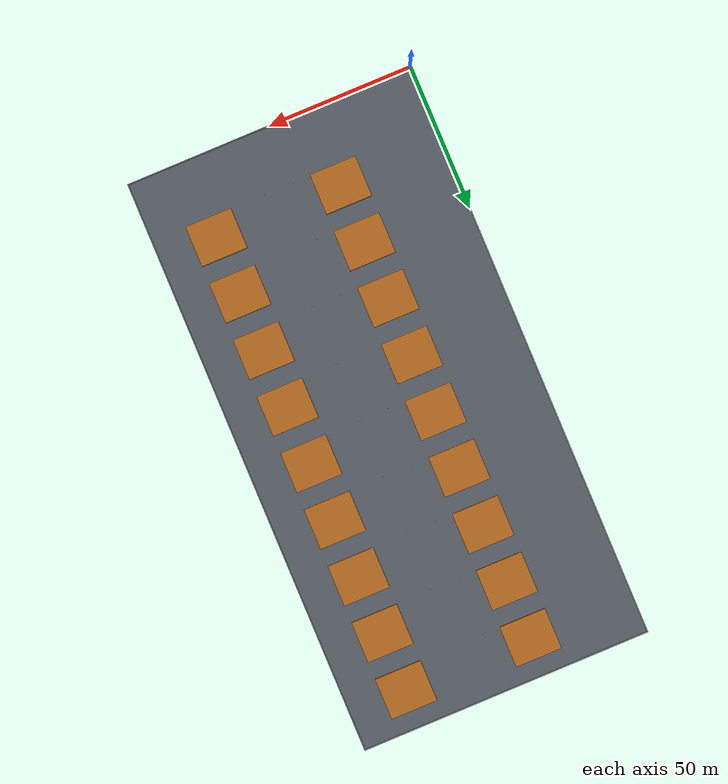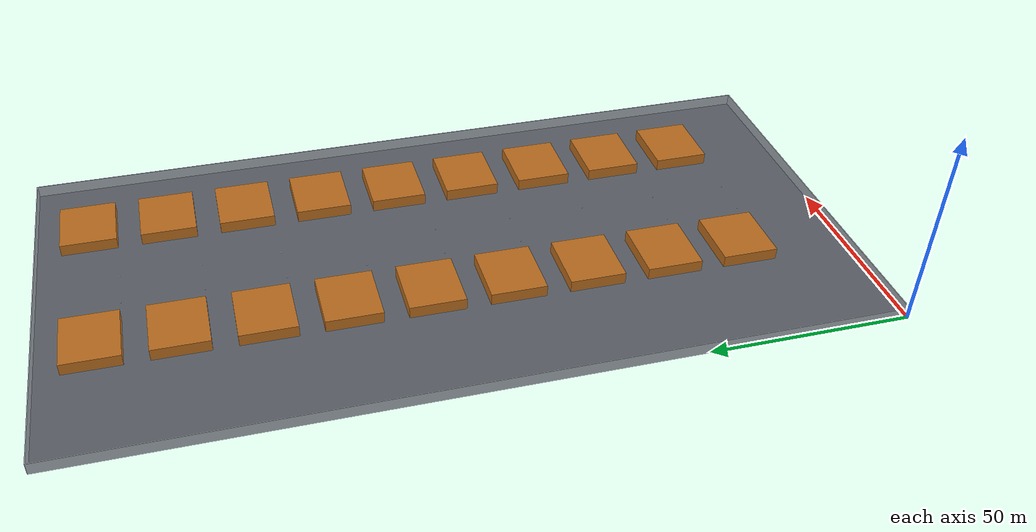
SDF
<?xml version="1.0"?>
<sdf version="1.6">
  <world name="warehouse_generated">
    <gravity>0 0 -9.81</gravity>
    <include><uri>model://sun</uri></include>
    <model name="floor_1">
      <static>true</static><pose>0 0 0 0 0 0</pose>
      <link name="link">
        <visual name="visual"><geometry><mesh><uri>file:///home/yahboom/swerve_bringup/generated/maps/WH-TEST-01/7/gazebo/models/floor_1/mesh.obj</uri><scale>1 1 1</scale></mesh></geometry><material><ambient>0.35 0.37 0.40 1</ambient><diffuse>0.35 0.37 0.40 1</diffuse></material></visual>
        <collision name="collision"><geometry><mesh><uri>file:///home/yahboom/swerve_bringup/generated/maps/WH-TEST-01/7/gazebo/models/floor_1/mesh.obj</uri><scale>1 1 1</scale></mesh></geometry></collision>
      </link>
    </model>
    <model name="floor_1_boundary_wall_0">
      <static>true</static>
      <pose>50 0 1.5 0 0 0</pose>
      <link name="link">
        <visual name="visual"><geometry><box><size>100 0.2 3</size></box></geometry><material><ambient>0.62 0.65 0.68 1</ambient><diffuse>0.62 0.65 0.68 1</diffuse></material></visual>
        <collision name="collision"><geometry><box><size>100 0.2 3</size></box></geometry></collision>
      </link>
    </model>
    <model name="floor_1_boundary_wall_1">
      <static>true</static>
      <pose>100 100 1.5 0 0 1.57079633</pose>
      <link name="link">
        <visual name="visual"><geometry><box><size>200 0.2 3</size></box></geometry><material><ambient>0.62 0.65 0.68 1</ambient><diffuse>0.62 0.65 0.68 1</diffuse></material></visual>
        <collision name="collision"><geometry><box><size>200 0.2 3</size></box></geometry></collision>
      </link>
    </model>
    <model name="floor_1_boundary_wall_2">
      <static>true</static>
      <pose>50 200 1.5 0 0 3.14159265</pose>
      <link name="link">
        <visual name="visual"><geometry><box><size>100 0.2 3</size></box></geometry><material><ambient>0.62 0.65 0.68 1</ambient><diffuse>0.62 0.65 0.68 1</diffuse></material></visual>
        <collision name="collision"><geometry><box><size>100 0.2 3</size></box></geometry></collision>
      </link>
    </model>
    <model name="floor_1_boundary_wall_3">
      <static>true</static>
      <pose>0 100 1.5 0 0 -1.57079633</pose>
      <link name="link">
        <visual name="visual"><geometry><box><size>200 0.2 3</size></box></geometry><material><ambient>0.62 0.65 0.68 1</ambient><diffuse>0.62 0.65 0.68 1</diffuse></material></visual>
        <collision name="collision"><geometry><box><size>200 0.2 3</size></box></geometry></collision>
      </link>
    </model>
    <model name="rack_SHELF-L01">
      <static>true</static>
      <pose>36 27 1.5 0 0 0</pose>
      <link name="link">
        <visual name="visual"><geometry><box><size>16 14 3</size></box></geometry><material><ambient>0.72 0.42 0.12 1</ambient><diffuse>0.72 0.42 0.12 1</diffuse></material></visual>
        <collision name="collision"><geometry><box><size>16 14 3</size></box></geometry></collision>
      </link>
    </model>
    <model name="rack_SHELF-R01">
      <static>true</static>
      <pose>80 27 1.5 0 0 0</pose>
      <link name="link">
        <visual name="visual"><geometry><box><size>16 14 3</size></box></geometry><material><ambient>0.72 0.42 0.12 1</ambient><diffuse>0.72 0.42 0.12 1</diffuse></material></visual>
        <collision name="collision"><geometry><box><size>16 14 3</size></box></geometry></collision>
      </link>
    </model>
    <model name="rack_SHELF-L02">
      <static>true</static>
      <pose>36 47 1.5 0 0 0</pose>
      <link name="link">
        <visual name="visual"><geometry><box><size>16 14 3</size></box></geometry><material><ambient>0.72 0.42 0.12 1</ambient><diffuse>0.72 0.42 0.12 1</diffuse></material></visual>
        <collision name="collision"><geometry><box><size>16 14 3</size></box></geometry></collision>
      </link>
    </model>
    <model name="rack_SHELF-R02">
      <static>true</static>
      <pose>80 47 1.5 0 0 0</pose>
      <link name="link">
        <visual name="visual"><geometry><box><size>16 14 3</size></box></geometry><material><ambient>0.72 0.42 0.12 1</ambient><diffuse>0.72 0.42 0.12 1</diffuse></material></visual>
        <collision name="collision"><geometry><box><size>16 14 3</size></box></geometry></collision>
      </link>
    </model>
    <model name="rack_SHELF-L03">
      <static>true</static>
      <pose>36 67 1.5 0 0 0</pose>
      <link name="link">
        <visual name="visual"><geometry><box><size>16 14 3</size></box></geometry><material><ambient>0.72 0.42 0.12 1</ambient><diffuse>0.72 0.42 0.12 1</diffuse></material></visual>
        <collision name="collision"><geometry><box><size>16 14 3</size></box></geometry></collision>
      </link>
    </model>
    <model name="rack_SHELF-R03">
      <static>true</static>
      <pose>80 67 1.5 0 0 0</pose>
      <link name="link">
        <visual name="visual"><geometry><box><size>16 14 3</size></box></geometry><material><ambient>0.72 0.42 0.12 1</ambient><diffuse>0.72 0.42 0.12 1</diffuse></material></visual>
        <collision name="collision"><geometry><box><size>16 14 3</size></box></geometry></collision>
      </link>
    </model>
    <model name="rack_SHELF-L04">
      <static>true</static>
      <pose>36 87 1.5 0 0 0</pose>
      <link name="link">
        <visual name="visual"><geometry><box><size>16 14 3</size></box></geometry><material><ambient>0.72 0.42 0.12 1</ambient><diffuse>0.72 0.42 0.12 1</diffuse></material></visual>
        <collision name="collision"><geometry><box><size>16 14 3</size></box></geometry></collision>
      </link>
    </model>
    <model name="rack_SHELF-R04">
      <static>true</static>
      <pose>80 87 1.5 0 0 0</pose>
      <link name="link">
        <visual name="visual"><geometry><box><size>16 14 3</size></box></geometry><material><ambient>0.72 0.42 0.12 1</ambient><diffuse>0.72 0.42 0.12 1</diffuse></material></visual>
        <collision name="collision"><geometry><box><size>16 14 3</size></box></geometry></collision>
      </link>
    </model>
    <model name="rack_SHELF-L05">
      <static>true</static>
      <pose>36 107 1.5 0 0 0</pose>
      <link name="link">
        <visual name="visual"><geometry><box><size>16 14 3</size></box></geometry><material><ambient>0.72 0.42 0.12 1</ambient><diffuse>0.72 0.42 0.12 1</diffuse></material></visual>
        <collision name="collision"><geometry><box><size>16 14 3</size></box></geometry></collision>
      </link>
    </model>
    <model name="rack_SHELF-R05">
      <static>true</static>
      <pose>80 107 1.5 0 0 0</pose>
      <link name="link">
        <visual name="visual"><geometry><box><size>16 14 3</size></box></geometry><material><ambient>0.72 0.42 0.12 1</ambient><diffuse>0.72 0.42 0.12 1</diffuse></material></visual>
        <collision name="collision"><geometry><box><size>16 14 3</size></box></geometry></collision>
      </link>
    </model>
    <model name="rack_SHELF-L06">
      <static>true</static>
      <pose>36 127 1.5 0 0 0</pose>
      <link name="link">
        <visual name="visual"><geometry><box><size>16 14 3</size></box></geometry><material><ambient>0.72 0.42 0.12 1</ambient><diffuse>0.72 0.42 0.12 1</diffuse></material></visual>
        <collision name="collision"><geometry><box><size>16 14 3</size></box></geometry></collision>
      </link>
    </model>
    <model name="rack_SHELF-R06">
      <static>true</static>
      <pose>80 127 1.5 0 0 0</pose>
      <link name="link">
        <visual name="visual"><geometry><box><size>16 14 3</size></box></geometry><material><ambient>0.72 0.42 0.12 1</ambient><diffuse>0.72 0.42 0.12 1</diffuse></material></visual>
        <collision name="collision"><geometry><box><size>16 14 3</size></box></geometry></collision>
      </link>
    </model>
    <model name="rack_SHELF-L07">
      <static>true</static>
      <pose>36 147 1.5 0 0 0</pose>
      <link name="link">
        <visual name="visual"><geometry><box><size>16 14 3</size></box></geometry><material><ambient>0.72 0.42 0.12 1</ambient><diffuse>0.72 0.42 0.12 1</diffuse></material></visual>
        <collision name="collision"><geometry><box><size>16 14 3</size></box></geometry></collision>
      </link>
    </model>
    <model name="rack_SHELF-R07">
      <static>true</static>
      <pose>80 147 1.5 0 0 0</pose>
      <link name="link">
        <visual name="visual"><geometry><box><size>16 14 3</size></box></geometry><material><ambient>0.72 0.42 0.12 1</ambient><diffuse>0.72 0.42 0.12 1</diffuse></material></visual>
        <collision name="collision"><geometry><box><size>16 14 3</size></box></geometry></collision>
      </link>
    </model>
    <model name="rack_SHELF-L08">
      <static>true</static>
      <pose>36 167 1.5 0 0 0</pose>
      <link name="link">
        <visual name="visual"><geometry><box><size>16 14 3</size></box></geometry><material><ambient>0.72 0.42 0.12 1</ambient><diffuse>0.72 0.42 0.12 1</diffuse></material></visual>
        <collision name="collision"><geometry><box><size>16 14 3</size></box></geometry></collision>
      </link>
    </model>
    <model name="rack_SHELF-R08">
      <static>true</static>
      <pose>80 167 1.5 0 0 0</pose>
      <link name="link">
        <visual name="visual"><geometry><box><size>16 14 3</size></box></geometry><material><ambient>0.72 0.42 0.12 1</ambient><diffuse>0.72 0.42 0.12 1</diffuse></material></visual>
        <collision name="collision"><geometry><box><size>16 14 3</size></box></geometry></collision>
      </link>
    </model>
    <model name="rack_SHELF-L09">
      <static>true</static>
      <pose>36 187 1.5 0 0 0</pose>
      <link name="link">
        <visual name="visual"><geometry><box><size>16 14 3</size></box></geometry><material><ambient>0.72 0.42 0.12 1</ambient><diffuse>0.72 0.42 0.12 1</diffuse></material></visual>
        <collision name="collision"><geometry><box><size>16 14 3</size></box></geometry></collision>
      </link>
    </model>
    <model name="rack_SHELF-R09">
      <static>true</static>
      <pose>80 187 1.5 0 0 0</pose>
      <link name="link">
        <visual name="visual"><geometry><box><size>16 14 3</size></box></geometry><material><ambient>0.72 0.42 0.12 1</ambient><diffuse>0.72 0.42 0.12 1</diffuse></material></visual>
        <collision name="collision"><geometry><box><size>16 14 3</size></box></geometry></collision>
      </link>
    </model>
    <model name="nav_tag_1101">
      <static>true</static><pose>40 20 0 0 0 1.57079633</pose>
      <link name="link">
        <visual name="substrate"><pose>0 0 0.003 0 0 0</pose><geometry><box><size>0.20 0.20 0.006</size></box></geometry><material><ambient>0.95 0.95 0.95 1</ambient><diffuse>0.95 0.95 0.95 1</diffuse></material></visual>
        <visual name="id_marker"><pose>0 0 0.007 0 0 0</pose><geometry><box><size>0.15 0.15 0.004</size></box></geometry><material><ambient>0.01 0.01 0.01 1</ambient><diffuse>0.01 0.01 0.01 1</diffuse></material></visual>
      </link>
    </model>
    <model name="nav_tag_1201">
      <static>true</static><pose>50 20 0 0 0 1.57079633</pose>
      <link name="link">
        <visual name="substrate"><pose>0 0 0.003 0 0 0</pose><geometry><box><size>0.20 0.20 0.006</size></box></geometry><material><ambient>0.95 0.95 0.95 1</ambient><diffuse>0.95 0.95 0.95 1</diffuse></material></visual>
        <visual name="id_marker"><pose>0 0 0.007 0 0 0</pose><geometry><box><size>0.15 0.15 0.004</size></box></geometry><material><ambient>0.01 0.01 0.01 1</ambient><diffuse>0.01 0.01 0.01 1</diffuse></material></visual>
      </link>
    </model>
    <model name="nav_tag_1301">
      <static>true</static><pose>60 20 0 0 0 1.57079633</pose>
      <link name="link">
        <visual name="substrate"><pose>0 0 0.003 0 0 0</pose><geometry><box><size>0.20 0.20 0.006</size></box></geometry><material><ambient>0.95 0.95 0.95 1</ambient><diffuse>0.95 0.95 0.95 1</diffuse></material></visual>
        <visual name="id_marker"><pose>0 0 0.007 0 0 0</pose><geometry><box><size>0.15 0.15 0.004</size></box></geometry><material><ambient>0.01 0.01 0.01 1</ambient><diffuse>0.01 0.01 0.01 1</diffuse></material></visual>
      </link>
    </model>
    <model name="nav_tag_1102">
      <static>true</static><pose>40 40 0 0 0 1.57079633</pose>
      <link name="link">
        <visual name="substrate"><pose>0 0 0.003 0 0 0</pose><geometry><box><size>0.20 0.20 0.006</size></box></geometry><material><ambient>0.95 0.95 0.95 1</ambient><diffuse>0.95 0.95 0.95 1</diffuse></material></visual>
        <visual name="id_marker"><pose>0 0 0.007 0 0 0</pose><geometry><box><size>0.15 0.15 0.004</size></box></geometry><material><ambient>0.01 0.01 0.01 1</ambient><diffuse>0.01 0.01 0.01 1</diffuse></material></visual>
      </link>
    </model>
    <model name="nav_tag_1202">
      <static>true</static><pose>50 40 0 0 0 1.57079633</pose>
      <link name="link">
        <visual name="substrate"><pose>0 0 0.003 0 0 0</pose><geometry><box><size>0.20 0.20 0.006</size></box></geometry><material><ambient>0.95 0.95 0.95 1</ambient><diffuse>0.95 0.95 0.95 1</diffuse></material></visual>
        <visual name="id_marker"><pose>0 0 0.007 0 0 0</pose><geometry><box><size>0.15 0.15 0.004</size></box></geometry><material><ambient>0.01 0.01 0.01 1</ambient><diffuse>0.01 0.01 0.01 1</diffuse></material></visual>
      </link>
    </model>
    <model name="nav_tag_1302">
      <static>true</static><pose>60 40 0 0 0 1.57079633</pose>
      <link name="link">
        <visual name="substrate"><pose>0 0 0.003 0 0 0</pose><geometry><box><size>0.20 0.20 0.006</size></box></geometry><material><ambient>0.95 0.95 0.95 1</ambient><diffuse>0.95 0.95 0.95 1</diffuse></material></visual>
        <visual name="id_marker"><pose>0 0 0.007 0 0 0</pose><geometry><box><size>0.15 0.15 0.004</size></box></geometry><material><ambient>0.01 0.01 0.01 1</ambient><diffuse>0.01 0.01 0.01 1</diffuse></material></visual>
      </link>
    </model>
    <model name="nav_tag_1103">
      <static>true</static><pose>40 60 0 0 0 1.57079633</pose>
      <link name="link">
        <visual name="substrate"><pose>0 0 0.003 0 0 0</pose><geometry><box><size>0.20 0.20 0.006</size></box></geometry><material><ambient>0.95 0.95 0.95 1</ambient><diffuse>0.95 0.95 0.95 1</diffuse></material></visual>
        <visual name="id_marker"><pose>0 0 0.007 0 0 0</pose><geometry><box><size>0.15 0.15 0.004</size></box></geometry><material><ambient>0.01 0.01 0.01 1</ambient><diffuse>0.01 0.01 0.01 1</diffuse></material></visual>
      </link>
    </model>
    <model name="nav_tag_1203">
      <static>true</static><pose>50 60 0 0 0 1.57079633</pose>
      <link name="link">
        <visual name="substrate"><pose>0 0 0.003 0 0 0</pose><geometry><box><size>0.20 0.20 0.006</size></box></geometry><material><ambient>0.95 0.95 0.95 1</ambient><diffuse>0.95 0.95 0.95 1</diffuse></material></visual>
        <visual name="id_marker"><pose>0 0 0.007 0 0 0</pose><geometry><box><size>0.15 0.15 0.004</size></box></geometry><material><ambient>0.01 0.01 0.01 1</ambient><diffuse>0.01 0.01 0.01 1</diffuse></material></visual>
      </link>
    </model>
    <model name="nav_tag_1303">
      <static>true</static><pose>60 60 0 0 0 1.57079633</pose>
      <link name="link">
        <visual name="substrate"><pose>0 0 0.003 0 0 0</pose><geometry><box><size>0.20 0.20 0.006</size></box></geometry><material><ambient>0.95 0.95 0.95 1</ambient><diffuse>0.95 0.95 0.95 1</diffuse></material></visual>
        <visual name="id_marker"><pose>0 0 0.007 0 0 0</pose><geometry><box><size>0.15 0.15 0.004</size></box></geometry><material><ambient>0.01 0.01 0.01 1</ambient><diffuse>0.01 0.01 0.01 1</diffuse></material></visual>
      </link>
    </model>
    <model name="nav_tag_1104">
      <static>true</static><pose>40 80 0 0 0 1.57079633</pose>
      <link name="link">
        <visual name="substrate"><pose>0 0 0.003 0 0 0</pose><geometry><box><size>0.20 0.20 0.006</size></box></geometry><material><ambient>0.95 0.95 0.95 1</ambient><diffuse>0.95 0.95 0.95 1</diffuse></material></visual>
        <visual name="id_marker"><pose>0 0 0.007 0 0 0</pose><geometry><box><size>0.15 0.15 0.004</size></box></geometry><material><ambient>0.01 0.01 0.01 1</ambient><diffuse>0.01 0.01 0.01 1</diffuse></material></visual>
      </link>
    </model>
    <model name="nav_tag_1204">
      <static>true</static><pose>50 80 0 0 0 1.57079633</pose>
      <link name="link">
        <visual name="substrate"><pose>0 0 0.003 0 0 0</pose><geometry><box><size>0.20 0.20 0.006</size></box></geometry><material><ambient>0.95 0.95 0.95 1</ambient><diffuse>0.95 0.95 0.95 1</diffuse></material></visual>
        <visual name="id_marker"><pose>0 0 0.007 0 0 0</pose><geometry><box><size>0.15 0.15 0.004</size></box></geometry><material><ambient>0.01 0.01 0.01 1</ambient><diffuse>0.01 0.01 0.01 1</diffuse></material></visual>
      </link>
    </model>
    <model name="nav_tag_1304">
      <static>true</static><pose>60 80 0 0 0 1.57079633</pose>
      <link name="link">
        <visual name="substrate"><pose>0 0 0.003 0 0 0</pose><geometry><box><size>0.20 0.20 0.006</size></box></geometry><material><ambient>0.95 0.95 0.95 1</ambient><diffuse>0.95 0.95 0.95 1</diffuse></material></visual>
        <visual name="id_marker"><pose>0 0 0.007 0 0 0</pose><geometry><box><size>0.15 0.15 0.004</size></box></geometry><material><ambient>0.01 0.01 0.01 1</ambient><diffuse>0.01 0.01 0.01 1</diffuse></material></visual>
      </link>
    </model>
    <model name="nav_tag_1105">
      <static>true</static><pose>40 100 0 0 0 1.57079633</pose>
      <link name="link">
        <visual name="substrate"><pose>0 0 0.003 0 0 0</pose><geometry><box><size>0.20 0.20 0.006</size></box></geometry><material><ambient>0.95 0.95 0.95 1</ambient><diffuse>0.95 0.95 0.95 1</diffuse></material></visual>
        <visual name="id_marker"><pose>0 0 0.007 0 0 0</pose><geometry><box><size>0.15 0.15 0.004</size></box></geometry><material><ambient>0.01 0.01 0.01 1</ambient><diffuse>0.01 0.01 0.01 1</diffuse></material></visual>
      </link>
    </model>
    <model name="nav_tag_1205">
      <static>true</static><pose>50 100 0 0 0 1.57079633</pose>
      <link name="link">
        <visual name="substrate"><pose>0 0 0.003 0 0 0</pose><geometry><box><size>0.20 0.20 0.006</size></box></geometry><material><ambient>0.95 0.95 0.95 1</ambient><diffuse>0.95 0.95 0.95 1</diffuse></material></visual>
        <visual name="id_marker"><pose>0 0 0.007 0 0 0</pose><geometry><box><size>0.15 0.15 0.004</size></box></geometry><material><ambient>0.01 0.01 0.01 1</ambient><diffuse>0.01 0.01 0.01 1</diffuse></material></visual>
      </link>
    </model>
    <model name="nav_tag_1305">
      <static>true</static><pose>60 100 0 0 0 1.57079633</pose>
      <link name="link">
        <visual name="substrate"><pose>0 0 0.003 0 0 0</pose><geometry><box><size>0.20 0.20 0.006</size></box></geometry><material><ambient>0.95 0.95 0.95 1</ambient><diffuse>0.95 0.95 0.95 1</diffuse></material></visual>
        <visual name="id_marker"><pose>0 0 0.007 0 0 0</pose><geometry><box><size>0.15 0.15 0.004</size></box></geometry><material><ambient>0.01 0.01 0.01 1</ambient><diffuse>0.01 0.01 0.01 1</diffuse></material></visual>
      </link>
    </model>
    <model name="nav_tag_1106">
      <static>true</static><pose>40 120 0 0 0 1.57079633</pose>
      <link name="link">
        <visual name="substrate"><pose>0 0 0.003 0 0 0</pose><geometry><box><size>0.20 0.20 0.006</size></box></geometry><material><ambient>0.95 0.95 0.95 1</ambient><diffuse>0.95 0.95 0.95 1</diffuse></material></visual>
        <visual name="id_marker"><pose>0 0 0.007 0 0 0</pose><geometry><box><size>0.15 0.15 0.004</size></box></geometry><material><ambient>0.01 0.01 0.01 1</ambient><diffuse>0.01 0.01 0.01 1</diffuse></material></visual>
      </link>
    </model>
    <model name="nav_tag_1206">
      <static>true</static><pose>50 120 0 0 0 1.57079633</pose>
      <link name="link">
        <visual name="substrate"><pose>0 0 0.003 0 0 0</pose><geometry><box><size>0.20 0.20 0.006</size></box></geometry><material><ambient>0.95 0.95 0.95 1</ambient><diffuse>0.95 0.95 0.95 1</diffuse></material></visual>
        <visual name="id_marker"><pose>0 0 0.007 0 0 0</pose><geometry><box><size>0.15 0.15 0.004</size></box></geometry><material><ambient>0.01 0.01 0.01 1</ambient><diffuse>0.01 0.01 0.01 1</diffuse></material></visual>
      </link>
    </model>
    <model name="nav_tag_1306">
      <static>true</static><pose>60 120 0 0 0 1.57079633</pose>
      <link name="link">
        <visual name="substrate"><pose>0 0 0.003 0 0 0</pose><geometry><box><size>0.20 0.20 0.006</size></box></geometry><material><ambient>0.95 0.95 0.95 1</ambient><diffuse>0.95 0.95 0.95 1</diffuse></material></visual>
        <visual name="id_marker"><pose>0 0 0.007 0 0 0</pose><geometry><box><size>0.15 0.15 0.004</size></box></geometry><material><ambient>0.01 0.01 0.01 1</ambient><diffuse>0.01 0.01 0.01 1</diffuse></material></visual>
      </link>
    </model>
    <model name="nav_tag_1107">
      <static>true</static><pose>40 140 0 0 0 1.57079633</pose>
      <link name="link">
        <visual name="substrate"><pose>0 0 0.003 0 0 0</pose><geometry><box><size>0.20 0.20 0.006</size></box></geometry><material><ambient>0.95 0.95 0.95 1</ambient><diffuse>0.95 0.95 0.95 1</diffuse></material></visual>
        <visual name="id_marker"><pose>0 0 0.007 0 0 0</pose><geometry><box><size>0.15 0.15 0.004</size></box></geometry><material><ambient>0.01 0.01 0.01 1</ambient><diffuse>0.01 0.01 0.01 1</diffuse></material></visual>
      </link>
    </model>
    <model name="nav_tag_1207">
      <static>true</static><pose>50 140 0 0 0 1.57079633</pose>
      <link name="link">
        <visual name="substrate"><pose>0 0 0.003 0 0 0</pose><geometry><box><size>0.20 0.20 0.006</size></box></geometry><material><ambient>0.95 0.95 0.95 1</ambient><diffuse>0.95 0.95 0.95 1</diffuse></material></visual>
        <visual name="id_marker"><pose>0 0 0.007 0 0 0</pose><geometry><box><size>0.15 0.15 0.004</size></box></geometry><material><ambient>0.01 0.01 0.01 1</ambient><diffuse>0.01 0.01 0.01 1</diffuse></material></visual>
      </link>
    </model>
    <model name="nav_tag_1307">
      <static>true</static><pose>60 140 0 0 0 1.57079633</pose>
      <link name="link">
        <visual name="substrate"><pose>0 0 0.003 0 0 0</pose><geometry><box><size>0.20 0.20 0.006</size></box></geometry><material><ambient>0.95 0.95 0.95 1</ambient><diffuse>0.95 0.95 0.95 1</diffuse></material></visual>
        <visual name="id_marker"><pose>0 0 0.007 0 0 0</pose><geometry><box><size>0.15 0.15 0.004</size></box></geometry><material><ambient>0.01 0.01 0.01 1</ambient><diffuse>0.01 0.01 0.01 1</diffuse></material></visual>
      </link>
    </model>
    <model name="nav_tag_1108">
      <static>true</static><pose>40 160 0 0 0 1.57079633</pose>
      <link name="link">
        <visual name="substrate"><pose>0 0 0.003 0 0 0</pose><geometry><box><size>0.20 0.20 0.006</size></box></geometry><material><ambient>0.95 0.95 0.95 1</ambient><diffuse>0.95 0.95 0.95 1</diffuse></material></visual>
        <visual name="id_marker"><pose>0 0 0.007 0 0 0</pose><geometry><box><size>0.15 0.15 0.004</size></box></geometry><material><ambient>0.01 0.01 0.01 1</ambient><diffuse>0.01 0.01 0.01 1</diffuse></material></visual>
      </link>
    </model>
    <model name="nav_tag_1208">
      <static>true</static><pose>50 160 0 0 0 1.57079633</pose>
      <link name="link">
        <visual name="substrate"><pose>0 0 0.003 0 0 0</pose><geometry><box><size>0.20 0.20 0.006</size></box></geometry><material><ambient>0.95 0.95 0.95 1</ambient><diffuse>0.95 0.95 0.95 1</diffuse></material></visual>
        <visual name="id_marker"><pose>0 0 0.007 0 0 0</pose><geometry><box><size>0.15 0.15 0.004</size></box></geometry><material><ambient>0.01 0.01 0.01 1</ambient><diffuse>0.01 0.01 0.01 1</diffuse></material></visual>
      </link>
    </model>
    <model name="nav_tag_1308">
      <static>true</static><pose>60 160 0 0 0 1.57079633</pose>
      <link name="link">
        <visual name="substrate"><pose>0 0 0.003 0 0 0</pose><geometry><box><size>0.20 0.20 0.006</size></box></geometry><material><ambient>0.95 0.95 0.95 1</ambient><diffuse>0.95 0.95 0.95 1</diffuse></material></visual>
        <visual name="id_marker"><pose>0 0 0.007 0 0 0</pose><geometry><box><size>0.15 0.15 0.004</size></box></geometry><material><ambient>0.01 0.01 0.01 1</ambient><diffuse>0.01 0.01 0.01 1</diffuse></material></visual>
      </link>
    </model>
    <model name="nav_tag_1109">
      <static>true</static><pose>40 180 0 0 0 1.57079633</pose>
      <link name="link">
        <visual name="substrate"><pose>0 0 0.003 0 0 0</pose><geometry><box><size>0.20 0.20 0.006</size></box></geometry><material><ambient>0.95 0.95 0.95 1</ambient><diffuse>0.95 0.95 0.95 1</diffuse></material></visual>
        <visual name="id_marker"><pose>0 0 0.007 0 0 0</pose><geometry><box><size>0.15 0.15 0.004</size></box></geometry><material><ambient>0.01 0.01 0.01 1</ambient><diffuse>0.01 0.01 0.01 1</diffuse></material></visual>
      </link>
    </model>
    <model name="nav_tag_1209">
      <static>true</static><pose>50 180 0 0 0 1.57079633</pose>
      <link name="link">
        <visual name="substrate"><pose>0 0 0.003 0 0 0</pose><geometry><box><size>0.20 0.20 0.006</size></box></geometry><material><ambient>0.95 0.95 0.95 1</ambient><diffuse>0.95 0.95 0.95 1</diffuse></material></visual>
        <visual name="id_marker"><pose>0 0 0.007 0 0 0</pose><geometry><box><size>0.15 0.15 0.004</size></box></geometry><material><ambient>0.01 0.01 0.01 1</ambient><diffuse>0.01 0.01 0.01 1</diffuse></material></visual>
      </link>
    </model>
    <model name="nav_tag_1309">
      <static>true</static><pose>60 180 0 0 0 1.57079633</pose>
      <link name="link">
        <visual name="substrate"><pose>0 0 0.003 0 0 0</pose><geometry><box><size>0.20 0.20 0.006</size></box></geometry><material><ambient>0.95 0.95 0.95 1</ambient><diffuse>0.95 0.95 0.95 1</diffuse></material></visual>
        <visual name="id_marker"><pose>0 0 0.007 0 0 0</pose><geometry><box><size>0.15 0.15 0.004</size></box></geometry><material><ambient>0.01 0.01 0.01 1</ambient><diffuse>0.01 0.01 0.01 1</diffuse></material></visual>
      </link>
    </model>
  </world>
</sdf>
